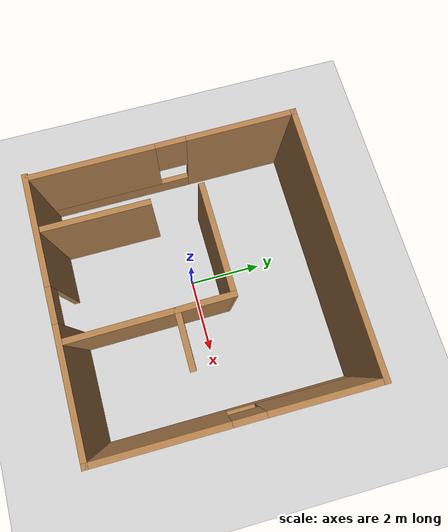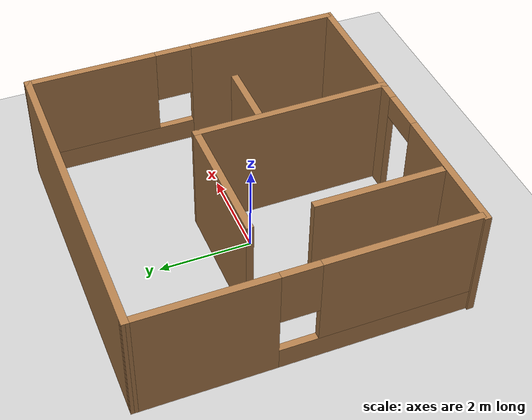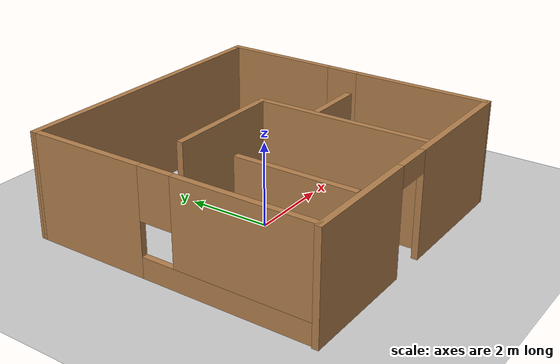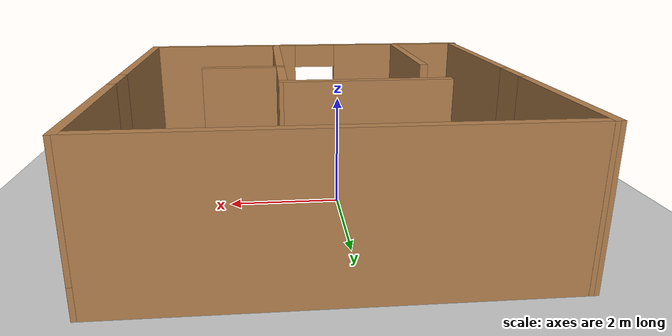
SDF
<sdf version="1.7">
 <world name="default">
  <light name="sun" type="directional">
   <pose>0 0 10 0 -0 0</pose>
   <diffuse>0.8 0.8 0.8 1</diffuse>
   <specular>0.2 0.2 0.2 1</specular>
   <attenuation>
    <range>1000</range>
    <constant>0.9</constant>
    <linear>0.01</linear>
    <quadratic>0.001</quadratic>
   </attenuation>
   <direction>-0.5 0.1 -0.9</direction>
   <spot><inner_angle>0</inner_angle><outer_angle>0</outer_angle><falloff>0</falloff></spot>
  </light>
  <model name="ground_plane">
   <static>1</static>
   <link name="link">
    <collision name="collision">
     <geometry><plane><normal>0 0 1</normal><size>100 100</size></plane></geometry>
     <surface><friction><ode><mu>100</mu><mu2>50</mu2></ode></friction></surface>
    </collision>
    <visual name="visual">
     <cast_shadows>0</cast_shadows>
     <geometry><plane><normal>0 0 1</normal><size>100 100</size></plane></geometry>
     <material>
      <script><uri>file://media/materials/scripts/gazebo.material</uri><name>Gazebo/Grey</name></script>
     </material>
    </visual>
   </link>
  </model>
  <gravity>0 0 -9.8</gravity>
  <magnetic_field>6e-06 2.3e-05 -4.2e-05</magnetic_field>
  <atmosphere type="adiabatic"/>
  <physics type="ode">
   <max_step_size>0.001</max_step_size>
   <real_time_factor>1</real_time_factor>
   <real_time_update_rate>1000</real_time_update_rate>
  </physics>
  <scene><ambient>0.4 0.4 0.4 1</ambient><background>0.7 0.7 0.7 1</background><shadows>1</shadows></scene>
  <spherical_coordinates>
   <surface_model>EARTH_WGS84</surface_model>
   <latitude_deg>0</latitude_deg>
   <longitude_deg>0</longitude_deg>
   <elevation>0</elevation>
   <heading_deg>0</heading_deg>
  </spherical_coordinates>
  <model name="maze">
   <pose>0.309126 0.076792 0 0 -0 0</pose>
   <link name="Wall_10">
    <collision name="Wall_10_Collision">
     <geometry><box><size>2.75 0.15 2.5</size></box></geometry>
     <pose>0 0 1.25 0 -0 0</pose>
    </collision>
    <visual name="Wall_10_Visual">
     <pose>0 0 1.25 0 -0 0</pose>
     <geometry><box><size>2.75 0.15 2.5</size></box></geometry>
     <material>
      <script><uri>file://media/materials/scripts/gazebo.material</uri><name>Gazebo/Wood</name></script>
      <ambient>1 1 1 1</ambient>
     </material>
     <meta><layer>0</layer></meta>
    </visual>
    <pose>-2.02795 -1.99532 0 0 -0 -1.5708</pose>
   </link>
   <link name="Wall_12">
    <collision name="Wall_12_Collision">
     <geometry><box><size>2.94002 0.15 2.5</size></box></geometry>
     <pose>0 0 1.25 0 -0 0</pose>
    </collision>
    <visual name="Wall_12_Visual">
     <pose>0 0 1.25 0 -0 0</pose>
     <geometry><box><size>2.94002 0.15 2.5</size></box></geometry>
     <material>
      <script><uri>file://media/materials/scripts/gazebo.material</uri><name>Gazebo/Wood</name></script>
      <ambient>1 1 1 1</ambient>
     </material>
     <meta><layer>0</layer></meta>
    </visual>
    <pose>-0.702949 0.689684 0 0 -0 0.003584</pose>
   </link>
   <link name="Wall_14">
    <collision name="Wall_14_Collision">
     <geometry><box><size>1.5 0.15 2.5</size></box></geometry>
     <pose>0 0 1.25 0 -0 0</pose>
    </collision>
    <visual name="Wall_14_Visual">
     <pose>0 0 1.25 0 -0 0</pose>
     <geometry><box><size>1.5 0.15 2.5</size></box></geometry>
     <material>
      <script><uri>file://media/materials/scripts/gazebo.material</uri><name>Gazebo/Wood</name></script>
      <ambient>1 1 1 1</ambient>
     </material>
     <meta><layer>0</layer></meta>
    </visual>
    <pose>1.39705 -0.675316 0 0 -0 0</pose>
   </link>
   <link name="Wall_3">
    <pose>-0.003143 -3.45303 0 0 -0 0.002479</pose>
    <visual name="Wall_3_Visual_0">
     <pose>-2.06965 0 1.25 0 -0 0</pose>
     <geometry><box><size>2.92894 0.15 2.5</size></box></geometry>
     <material>
      <script><uri>file://media/materials/scripts/gazebo.material</uri><name>Gazebo/Wood</name></script>
      <ambient>1 1 1 1</ambient>
     </material>
     <meta><layer>0</layer></meta>
    </visual>
    <collision name="Wall_3_Collision_0">
     <geometry><box><size>2.92894 0.15 2.5</size></box></geometry>
     <pose>-2.06965 0 1.25 0 -0 0</pose>
    </collision>
    <visual name="Wall_3_Visual_1">
     <pose>1.91447 0 1.25 0 -0 0</pose>
     <geometry><box><size>3.2393 0.15 2.5</size></box></geometry>
     <material>
      <script><uri>file://media/materials/scripts/gazebo.material</uri><name>Gazebo/Wood</name></script>
      <ambient>1 1 1 1</ambient>
     </material>
     <meta><layer>0</layer></meta>
    </visual>
    <collision name="Wall_3_Collision_1">
     <geometry><box><size>3.2393 0.15 2.5</size></box></geometry>
     <pose>1.91447 0 1.25 0 -0 0</pose>
    </collision>
    <visual name="Wall_3_Visual_2">
     <pose>-0.155183 0 2.25 0 -0 0</pose>
     <geometry><box><size>0.9 0.15 0.5</size></box></geometry>
     <material>
      <script><uri>file://media/materials/scripts/gazebo.material</uri><name>Gazebo/Wood</name></script>
      <ambient>1 1 1 1</ambient>
     </material>
     <meta><layer>0</layer></meta>
    </visual>
    <collision name="Wall_3_Collision_2">
     <geometry><box><size>0.9 0.15 0.5</size></box></geometry>
     <pose>-0.155183 0 2.25 0 -0 0</pose>
    </collision>
   </link>
   <link name="Wall_4">
    <pose>3.45904 -0.006618 0 0 -0 1.5699</pose>
    <visual name="Wall_4_Visual_0">
     <pose>-1.82576 0 1.25 0 -0 0</pose>
     <geometry><box><size>3.37415 0.15 2.5</size></box></geometry>
     <material>
      <script><uri>file://media/materials/scripts/gazebo.material</uri><name>Gazebo/Wood</name></script>
      <ambient>1 1 1 1</ambient>
     </material>
     <meta><layer>0</layer></meta>
    </visual>
    <collision name="Wall_4_Collision_0">
     <geometry><box><size>3.37415 0.15 2.5</size></box></geometry>
     <pose>-1.82576 0 1.25 0 -0 0</pose>
    </collision>
    <visual name="Wall_4_Visual_1">
     <pose>1.68708 0 0.25 0 -0 0</pose>
     <geometry><box><size>3.65153 0.15 0.5</size></box></geometry>
     <material>
      <script><uri>file://media/materials/scripts/gazebo.material</uri><name>Gazebo/Wood</name></script>
      <ambient>1 1 1 1</ambient>
     </material>
     <meta><layer>0</layer></meta>
    </visual>
    <collision name="Wall_4_Collision_1">
     <geometry><box><size>3.65153 0.15 0.5</size></box></geometry>
     <pose>1.68708 0 0.25 0 -0 0</pose>
    </collision>
    <visual name="Wall_4_Visual_2">
     <pose>2.08708 0 1.5 0 -0 0</pose>
     <geometry><box><size>2.85153 0.15 2</size></box></geometry>
     <material>
      <script><uri>file://media/materials/scripts/gazebo.material</uri><name>Gazebo/Wood</name></script>
      <ambient>1 1 1 1</ambient>
     </material>
     <meta><layer>0</layer></meta>
    </visual>
    <collision name="Wall_4_Collision_2">
     <geometry><box><size>2.85153 0.15 2</size></box></geometry>
     <pose>2.08708 0 1.5 0 -0 0</pose>
    </collision>
    <visual name="Wall_4_Visual_3">
     <pose>0.261314 0 1.9 0 -0 0</pose>
     <geometry><box><size>0.8 0.15 1.2</size></box></geometry>
     <material>
      <script><uri>file://media/materials/scripts/gazebo.material</uri><name>Gazebo/Wood</name></script>
      <ambient>1 1 1 1</ambient>
     </material>
     <meta><layer>0</layer></meta>
    </visual>
    <collision name="Wall_4_Collision_3">
     <geometry><box><size>0.8 0.15 1.2</size></box></geometry>
     <pose>0.261314 0 1.9 0 -0 0</pose>
    </collision>
   </link>
   <link name="Wall_5">
    <collision name="Wall_5_Collision">
     <geometry><box><size>7.05366 0.15 2.5</size></box></geometry>
     <pose>0 0 1.25 0 -0 0</pose>
    </collision>
    <visual name="Wall_5_Visual">
     <pose>0 0 1.25 0 -0 0</pose>
     <geometry><box><size>7.05366 0.15 2.5</size></box></geometry>
     <material>
      <script><uri>file://media/materials/scripts/gazebo.material</uri><name>Gazebo/Wood</name></script>
      <ambient>1 1 1 1</ambient>
     </material>
     <meta><layer>0</layer></meta>
    </visual>
    <pose>0.010312 3.44634 0 0 -0 3.13721</pose>
   </link>
   <link name="Wall_6">
    <pose>-3.43014 0.043697 0 0 -0 -1.56748</pose>
    <visual name="Wall_6_Visual_0">
     <pose>-2.03687 0 1.25 0 -0 0</pose>
     <geometry><box><size>2.91184 0.15 2.5</size></box></geometry>
     <material>
      <script><uri>file://media/materials/scripts/gazebo.material</uri><name>Gazebo/Wood</name></script>
      <ambient>1 1 1 1</ambient>
     </material>
     <meta><layer>0</layer></meta>
    </visual>
    <collision name="Wall_6_Collision_0">
     <geometry><box><size>2.91184 0.15 2.5</size></box></geometry>
     <pose>-2.03687 0 1.25 0 -0 0</pose>
    </collision>
    <visual name="Wall_6_Visual_1">
     <pose>1.45592 0 0.25 0 -0 0</pose>
     <geometry><box><size>4.07373 0.15 0.5</size></box></geometry>
     <material>
      <script><uri>file://media/materials/scripts/gazebo.material</uri><name>Gazebo/Wood</name></script>
      <ambient>1 1 1 1</ambient>
     </material>
     <meta><layer>0</layer></meta>
    </visual>
    <collision name="Wall_6_Collision_1">
     <geometry><box><size>4.07373 0.15 0.5</size></box></geometry>
     <pose>1.45592 0 0.25 0 -0 0</pose>
    </collision>
    <visual name="Wall_6_Visual_2">
     <pose>1.85592 0 1.5 0 -0 0</pose>
     <geometry><box><size>3.27373 0.15 2</size></box></geometry>
     <material>
      <script><uri>file://media/materials/scripts/gazebo.material</uri><name>Gazebo/Wood</name></script>
      <ambient>1 1 1 1</ambient>
     </material>
     <meta><layer>0</layer></meta>
    </visual>
    <collision name="Wall_6_Collision_2">
     <geometry><box><size>3.27373 0.15 2</size></box></geometry>
     <pose>1.85592 0 1.5 0 -0 0</pose>
    </collision>
    <visual name="Wall_6_Visual_3">
     <pose>-0.180946 0 1.9 0 -0 0</pose>
     <geometry><box><size>0.8 0.15 1.2</size></box></geometry>
     <material>
      <script><uri>file://media/materials/scripts/gazebo.material</uri><name>Gazebo/Wood</name></script>
      <ambient>1 1 1 1</ambient>
     </material>
     <meta><layer>0</layer></meta>
    </visual>
    <collision name="Wall_6_Collision_3">
     <geometry><box><size>0.8 0.15 1.2</size></box></geometry>
     <pose>-0.180946 0 1.9 0 -0 0</pose>
    </collision>
   </link>
   <link name="Wall_8">
    <collision name="Wall_8_Collision">
     <geometry><box><size>4.29019 0.15 2.5</size></box></geometry>
     <pose>0 0 1.25 0 -0 0</pose>
    </collision>
    <visual name="Wall_8_Visual">
     <pose>0 0 1.25 0 -0 0</pose>
     <geometry><box><size>4.29019 0.15 2.5</size></box></geometry>
     <material>
      <script><uri>file://media/materials/scripts/gazebo.material</uri><name>Gazebo/Wood</name></script>
      <ambient>1 1 1 1</ambient>
     </material>
     <meta><layer>0</layer></meta>
    </visual>
    <pose>0.712052 -1.37532 0 0 -0 -1.56113</pose>
   </link>
   <static>1</static>
  </model>
 </world>
</sdf>
